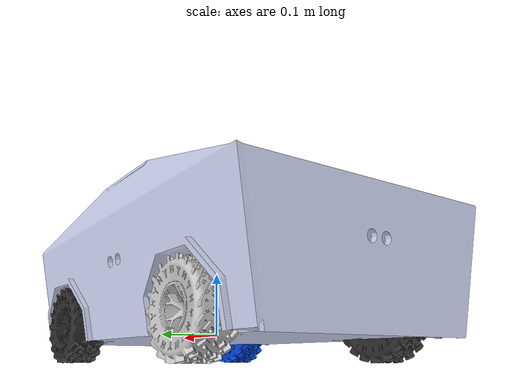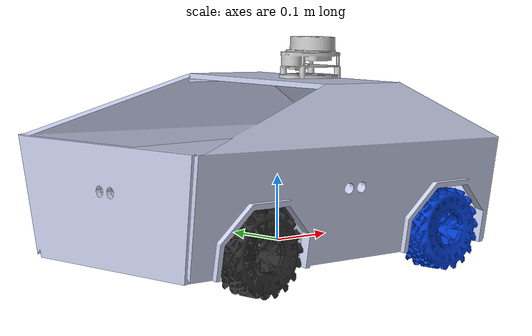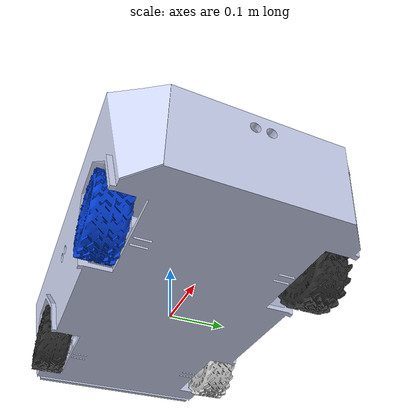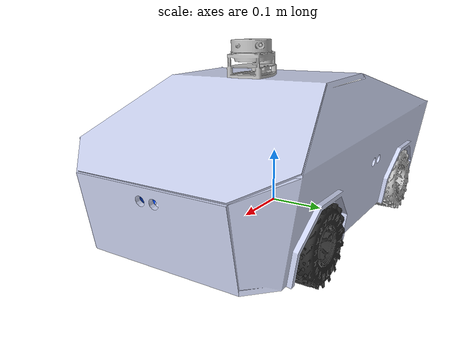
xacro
<?xml version="1.0"?>
<robot xmlns:xacro="http://ros.org/wiki/xacro" name="cyber_robt">
  <!-- Arguments -->
  <xacro:arg name="use_ignition" default="true"/>
  <!-- Include robot structure -->
  <xacro:include filename="$(find cyber_robt)/urdf/cyber_robt_base.urdf.xacro"/>
  <!-- Include plugin sets -->

  <!-- Conditionally load plugins-->
  <xacro:if value="$(arg use_ignition)">
    <xacro:include filename="$(find cyber_robt)/urdf/ignition_plugins.xacro"/>
  </xacro:if>
  <xacro:unless value="$(arg use_ignition)">
    <xacro:include filename="$(find cyber_robt)/urdf/classic_plugins.xacro"/>
  </xacro:unless>

</robot>

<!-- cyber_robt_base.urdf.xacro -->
<xacro:macro name="cyber_robt_base" xmlns:xacro="http://ros.org/wiki/xacro">
  <link
    name="base_link">
    <inertial>
      <origin
        xyz="-0.0091611 0.00059417 0.098166"
        rpy="0 0 0" />
      <mass
        value="4" />
      <inertia
        ixx="0.052616"
        ixy="0.00012866"
        ixz="0.00087061"
        iyy="0.15378"
        iyz="6.3384E-05"
        izz="0.19568" />
    </inertial>
    <visual>
      <origin
        xyz="0 0 0"
        rpy="0 0 0" />
      <geometry>
        <mesh
          filename="package://cyber_robt/meshes/base_link.STL" />
      </geometry>
      <material
        name="">
        <color
          rgba="0.79216 0.81961 0.93333 1" />
      </material>
    </visual>
    <collision>
      <origin
        xyz="0 0 0.0"
        rpy="0 0 0" />
      <geometry>
        <mesh
          filename="package://cyber_robt/meshes/base_link.STL" />
      </geometry>
    </collision>
  </link>
  <link
    name="W_B_L">
    <inertial>
      <origin
        xyz="1.04621901142465E-08 7.33407984343515E-09 0.00451444303412896"
        rpy="0 0 0" />
      <mass
        value="0.3" />
      <inertia
        ixx="0.000173950330336761"
        ixy="-9.00569003291215E-11"
        ixz="3.09004583221448E-11"
        iyy="0.000173950344543359"
        iyz="1.81423573220387E-11"
        izz="0.000277761447470617" />
    </inertial>
    <visual>
      <origin
        xyz="0 0 0"
        rpy="0 0 0" />
      <geometry>
        <mesh
          filename="package://cyber_robt/meshes/W_B_L.STL" />
      </geometry>
      <material
        name="">
        <color
          rgba="0.752941176470588 0.752941176470588 0.752941176470588 1" />
      </material>
    </visual>
    <collision>
      <origin
        xyz="0 0 0"
        rpy="0 0 0" />
      <geometry>
        <mesh
          filename="package://cyber_robt/meshes/W_B_L.STL" />
      </geometry>
    </collision>
  </link>
  <joint
    name="W_B_L_joint"
    type="continuous">
    <origin
      xyz="-0.19374 0.16464 0.01975"
      rpy="-1.5708 0 0" />
    <parent
      link="base_link" />
    <child
      link="W_B_L" />
    <axis
      xyz="0 0 1" />
    <mimic joint="W_F_L_joint"/>
  </joint>
  <link
    name="W_F_L">
    <inertial>
      <origin
        xyz="1.04755673718815E-08 7.32929028579576E-09 0.0045144429988957"
        rpy="0 0 0" />
      <mass
        value="0.3" />
      <inertia
        ixx="0.000173950330312339"
        ixy="-9.00559008468017E-11"
        ixz="3.08963073222672E-11"
        iyy="0.000173950344524454"
        iyz="1.8142724600611E-11"
        izz="0.000277761447439209" />
    </inertial>
    <visual>
      <origin
        xyz="0 0 0"
        rpy="0 0 0" />
      <geometry>
        <mesh
          filename="package://cyber_robt/meshes/W_F_L.STL" />
      </geometry>
      <material
        name="">
        <color
          rgba="0.164705882352941 0.164705882352941 0.164705882352941 1" />
      </material>
    </visual>
    <collision>
      <origin
        xyz="0 0 0"
        rpy="0 0 0" />
      <geometry>
        <mesh
          filename="package://cyber_robt/meshes/W_F_L.STL" />
      </geometry>
    </collision>
  </link>
  <joint
    name="W_F_L_joint"
    type="continuous">
    <origin
      xyz="0.17551 0.16464 0.01975"
      rpy="-1.5708 0 0" />
    <parent
      link="base_link" />
    <child
      link="W_F_L" />
    <axis
      xyz="0 0 1" />
  </joint>
  <link
    name="W_B_R">
    <inertial>
      <origin
        xyz="-1.04530648581402E-08 7.33744742742459E-09 -0.00451444301990683"
        rpy="0 0 0" />
      <mass
        value="0.3" />
      <inertia
        ixx="0.000173950330329626"
        ixy="9.00577592178687E-11"
        ixz="3.09042715809237E-11"
        iyy="0.000173950344535046"
        iyz="-1.81402735629844E-11"
        izz="0.000277761447462463" />
    </inertial>
    <visual>
      <origin
        xyz="0 0 0"
        rpy="0 0 0" />
      <geometry>
        <mesh
          filename="package://cyber_robt/meshes/W_B_R.STL" />
      </geometry>
      <material
        name="">
        <color
          rgba="0.164705882352941 0.164705882352941 0.164705882352941 1" />
      </material>
    </visual>
    <collision>
      <origin
        xyz="0 0 0"
        rpy="0 0 0" />
      <geometry>
        <mesh
          filename="package://cyber_robt/meshes/W_B_R.STL" />
      </geometry>
    </collision>
  </link>
  <joint
    name="W_B_R_joint"
    type="continuous">
    <origin
      xyz="-0.19374 -0.16473 0.01975"
      rpy="-1.5708 0 0" />
    <parent
      link="base_link" />
    <child
      link="W_B_R" />
    <axis
      xyz="0 0 1" />
    <mimic joint="W_F_R_joint"/>

  </joint>
  <link
    name="W_F_R">
    <inertial>
      <origin
        xyz="-1.04612485063438E-08 7.3332188099684E-09 -0.00451444303336418"
        rpy="0 0 0" />
      <mass
        value="0.3" />
      <inertia
        ixx="0.000173950330336794"
        ixy="9.00569289950247E-11"
        ixz="3.09003713566558E-11"
        iyy="0.000173950344543733"
        iyz="-1.81423558399572E-11"
        izz="0.000277761447470974" />
    </inertial>
    <visual>
      <origin
        xyz="0 0 0"
        rpy="0 0 0" />
      <geometry>
        <mesh
          filename="package://cyber_robt/meshes/W_F_R.STL" />
      </geometry>
      <material
        name="">
        <color
          rgba="0.00784313725490196 0.23921568627451 0.823529411764706 1" />
      </material>
    </visual>
    <collision>
      <origin
        xyz="0 0 0"
        rpy="0 0 0" />
      <geometry>
        <mesh
          filename="package://cyber_robt/meshes/W_F_R.STL" />
      </geometry>
    </collision>
  </link>
  <joint
    name="W_F_R_joint"
    type="continuous">
    <origin
      xyz="0.17626 -0.16473 0.01975"
      rpy="-1.5708 0 0" />
    <parent
      link="base_link" />
    <child
      link="W_F_R" />
    <axis
      xyz="0 0 1" />
  </joint>
  <link
    name="Lidar">
    <inertial>
      <origin
        xyz="-0.0125525443278058 0.0352042399925181 1.38374507929195E-05"
        rpy="0 0 0" />
      <mass
        value="0.0941041922779478" />
      <inertia
        ixx="2.80065165934002E-05"
        ixy="-1.34915585630204E-06"
        ixz="-9.66826757177557E-07"
        iyy="6.943287134712E-05"
        iyz="1.57761616273888E-07"
        izz="4.42980194300437E-05" />
    </inertial>
    <visual>
      <origin
        xyz="0 0 0"
        rpy="-1.57008 0 0" />
      <geometry>
        <mesh
          filename="package://cyber_robt/meshes/Lidar.STL" />
      </geometry>
      <material
        name="">
        <color
          rgba="0.752941176470588 0.752941176470588 0.752941176470588 1" />
      </material>
    </visual>
  </link>
  <joint
    name="Lidar_joint"
    type="fixed">
    <origin
      xyz="0.069913 -0.0039993 0.30878"
      rpy="0 0 0" />
    <parent
      link="base_link" />
    <child
      link="Lidar" />
    <axis
      xyz="0.024581 -0.99967 -0.0069583" />
  </joint>

  <link name='imu_link'>
        <visual >
          <geometry>
            <box size="0.05 0.05 0.05"/>
          </geometry>
          <material name="blue">
            <color rgba="0 0 1 1"/>
          </material>
        </visual>
        <inertial>
            <mass value="0.01"/>
            <inertia ixx="0.00001" ixy="0.0" ixz="0.0" iyy="0.00001" iyz="0.0" izz="0.00001"/>
        </inertial>

  </link>

  <joint name='imu_joint' type='fixed'>
      <parent link="base_link"/>
      <child link="imu_link"/>
      <origin xyz="0.0 0.0 0.15" rpy="0 0 0"/>
  </joint>

</xacro:macro>
